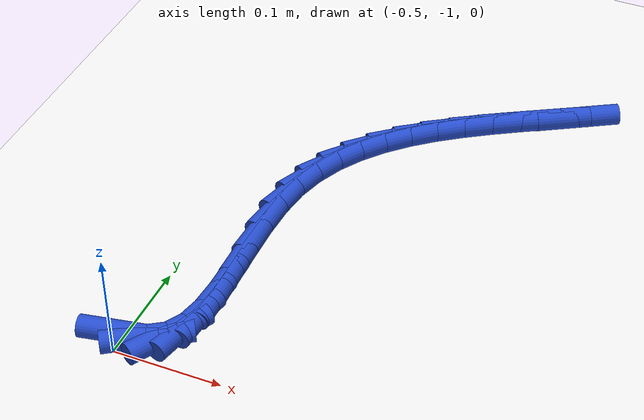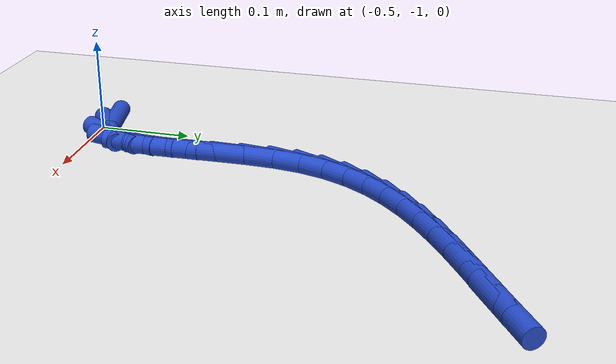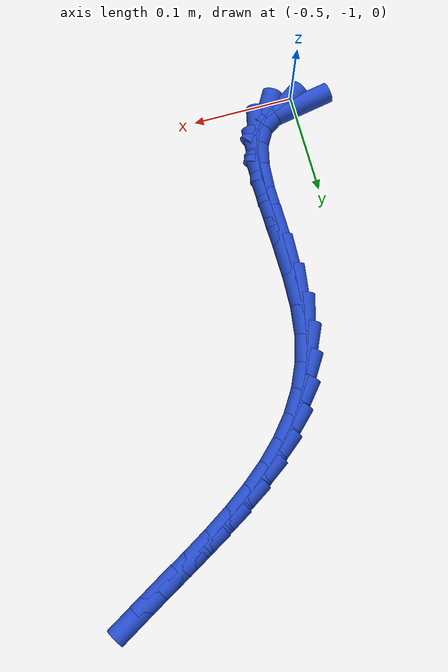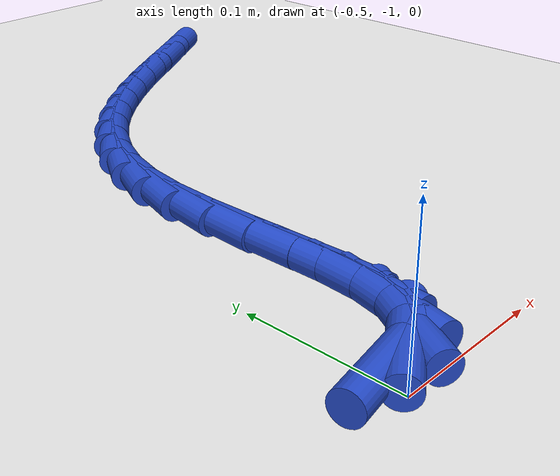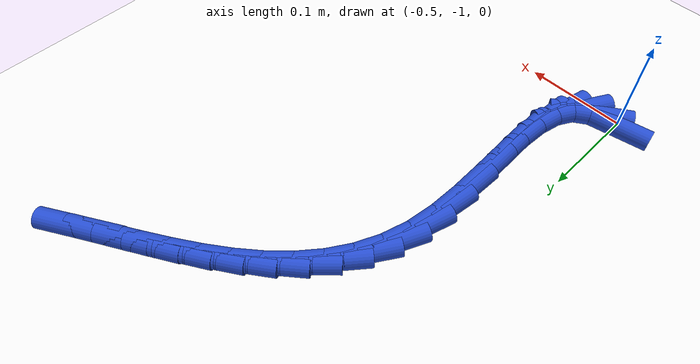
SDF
<sdf version="1.6">
 <world name="default">
  <model name="ground_plane">
   <static>1</static>
   <link name="link">
    <collision name="collision">
     <geometry><plane><normal>0 0 1</normal><size>100 100</size></plane></geometry>
     <surface><friction><ode><mu>100</mu><mu2>50</mu2></ode></friction></surface>
    </collision>
    <visual name="visual">
     <cast_shadows>0</cast_shadows>
     <geometry><plane><normal>0 0 1</normal><size>100 100</size></plane></geometry>
     <material>
      <script><uri>file://media/materials/scripts/gazebo.material</uri><name>Gazebo/WhiteGlow</name></script>
     </material>
    </visual>
   </link>
  </model>
  <model name="line">
   <link name="link_215">
    <pose>-0.49659612297587397 -0.9854050994066351 0.01 0 1.57 0.18572902300272476</pose>
    <collision name="collision">
     <geometry><cylinder><radius>0.01</radius><length>0.08</length></cylinder></geometry>
    </collision>
    <visual name="visual">
     <material>
      <script><name>Gazebo/Blue</name><uri>file://media/materials/scripts/gazebo.material</uri></script>
     </material>
     <geometry><cylinder><radius>0.01</radius><length>0.08</length></cylinder></geometry>
    </visual>
   </link>
   <link name="link_216">
    <pose>-0.4771522201242002 -0.9817516970351042 0.01 0 1.57 0.5827101683935811</pose>
    <collision name="collision">
     <geometry><cylinder><radius>0.01</radius><length>0.08</length></cylinder></geometry>
    </collision>
    <visual name="visual">
     <material>
      <script><name>Gazebo/Blue</name><uri>file://media/materials/scripts/gazebo.material</uri></script>
     </material>
     <geometry><cylinder><radius>0.01</radius><length>0.08</length></cylinder></geometry>
    </visual>
   </link>
   <link name="link_217">
    <pose>-0.4627462421071338 -0.9722574538637154 0.01 0 1.57 1.0533408832191964</pose>
    <collision name="collision">
     <geometry><cylinder><radius>0.01</radius><length>0.08</length></cylinder></geometry>
    </collision>
    <visual name="visual">
     <material>
      <script><name>Gazebo/Blue</name><uri>file://media/materials/scripts/gazebo.material</uri></script>
     </material>
     <geometry><cylinder><radius>0.01</radius><length>0.08</length></cylinder></geometry>
    </visual>
   </link>
   <link name="link_218">
    <pose>-0.45366133286164684 -0.9562962791273784 0.01 0 1.57 1.3511954769195977</pose>
    <collision name="collision">
     <geometry><cylinder><radius>0.01</radius><length>0.08</length></cylinder></geometry>
    </collision>
    <visual name="visual">
     <material>
      <script><name>Gazebo/Blue</name><uri>file://media/materials/scripts/gazebo.material</uri></script>
     </material>
     <geometry><cylinder><radius>0.01</radius><length>0.08</length></cylinder></geometry>
    </visual>
   </link>
   <link name="link_219">
    <pose>-0.448877783599036 -0.9348646403164717 0.01 0 1.57 1.5059524323706879</pose>
    <collision name="collision">
     <geometry><cylinder><radius>0.01</radius><length>0.08</length></cylinder></geometry>
    </collision>
    <visual name="visual">
     <material>
      <script><name>Gazebo/Blue</name><uri>file://media/materials/scripts/gazebo.material</uri></script>
     </material>
     <geometry><cylinder><radius>0.01</radius><length>0.08</length></cylinder></geometry>
    </visual>
   </link>
   <link name="link_220">
    <pose>-0.44720909145574644 -0.9091667284021471 0.01 0 1.57 -1.561767984963005</pose>
    <collision name="collision">
     <geometry><cylinder><radius>0.01</radius><length>0.08</length></cylinder></geometry>
    </collision>
    <visual name="visual">
     <material>
      <script><name>Gazebo/Blue</name><uri>file://media/materials/scripts/gazebo.material</uri></script>
     </material>
     <geometry><cylinder><radius>0.01</radius><length>0.08</length></cylinder></geometry>
    </visual>
   </link>
   <link name="link_221">
    <pose>-0.4474687535682229 -0.8804067343555584 0.01 0 1.57 -1.5380979043716756</pose>
    <collision name="collision">
     <geometry><cylinder><radius>0.01</radius><length>0.08</length></cylinder></geometry>
    </collision>
    <visual name="visual">
     <material>
      <script><name>Gazebo/Blue</name><uri>file://media/materials/scripts/gazebo.material</uri></script>
     </material>
     <geometry><cylinder><radius>0.01</radius><length>0.08</length></cylinder></geometry>
    </visual>
   </link>
   <link name="link_222">
    <pose>-0.4484702670729107 -0.8497888491478568 0.01 0 1.57 -1.5529909236708062</pose>
    <collision name="collision">
     <geometry><cylinder><radius>0.01</radius><length>0.08</length></cylinder></geometry>
    </collision>
    <visual name="visual">
     <material>
      <script><name>Gazebo/Blue</name><uri>file://media/materials/scripts/gazebo.material</uri></script>
     </material>
     <geometry><cylinder><radius>0.01</radius><length>0.08</length></cylinder></geometry>
    </visual>
   </link>
   <link name="link_223">
    <pose>-0.44902712910625464 -0.8185172637501951 0.01 0 1.57 1.535841363823414</pose>
    <collision name="collision">
     <geometry><cylinder><radius>0.01</radius><length>0.08</length></cylinder></geometry>
    </collision>
    <visual name="visual">
     <material>
      <script><name>Gazebo/Blue</name><uri>file://media/materials/scripts/gazebo.material</uri></script>
     </material>
     <geometry><cylinder><radius>0.01</radius><length>0.08</length></cylinder></geometry>
    </visual>
   </link>
   <link name="link_224">
    <pose>-0.44795283680470005 -0.7877961691337254 0.01 0 1.57 1.4373068172647263</pose>
    <collision name="collision">
     <geometry><cylinder><radius>0.01</radius><length>0.08</length></cylinder></geometry>
    </collision>
    <visual name="visual">
     <material>
      <script><name>Gazebo/Blue</name><uri>file://media/materials/scripts/gazebo.material</uri></script>
     </material>
     <geometry><cylinder><radius>0.01</radius><length>0.08</length></cylinder></geometry>
    </visual>
   </link>
   <link name="link_225">
    <pose>-0.4440627547416634 -0.7588279887330335 0.01 0 1.57 1.2956466160979885</pose>
    <collision name="collision">
     <geometry><cylinder><radius>0.01</radius><length>0.08</length></cylinder></geometry>
    </collision>
    <visual name="visual">
     <material>
      <script><name>Gazebo/Blue</name><uri>file://media/materials/scripts/gazebo.material</uri></script>
     </material>
     <geometry><cylinder><radius>0.01</radius><length>0.08</length></cylinder></geometry>
    </visual>
   </link>
   <link name="link_226">
    <pose>-0.4366037592680955 -0.7324067183585427 0.01 0 1.57 1.1480732105878613</pose>
    <collision name="collision">
     <geometry><cylinder><radius>0.01</radius><length>0.08</length></cylinder></geometry>
    </collision>
    <visual name="visual">
     <material>
      <script><name>Gazebo/Blue</name><uri>file://media/materials/scripts/gazebo.material</uri></script>
     </material>
     <geometry><cylinder><radius>0.01</radius><length>0.08</length></cylinder></geometry>
    </visual>
   </link>
   <link name="link_227">
    <pose>-0.42580359392983164 -0.7083979590957024 0.01 0 1.57 1.0083845068990989</pose>
    <collision name="collision">
     <geometry><cylinder><radius>0.01</radius><length>0.08</length></cylinder></geometry>
    </collision>
    <visual name="visual">
     <material>
      <script><name>Gazebo/Blue</name><uri>file://media/materials/scripts/gazebo.material</uri></script>
     </material>
     <geometry><cylinder><radius>0.01</radius><length>0.08</length></cylinder></geometry>
    </visual>
   </link>
   <link name="link_228">
    <pose>-0.41202557247831134 -0.6865389942878644 0.01 0 1.57 0.8835113111752338</pose>
    <collision name="collision">
     <geometry><cylinder><radius>0.01</radius><length>0.08</length></cylinder></geometry>
    </collision>
    <visual name="visual">
     <material>
      <script><name>Gazebo/Blue</name><uri>file://media/materials/scripts/gazebo.material</uri></script>
     </material>
     <geometry><cylinder><radius>0.01</radius><length>0.08</length></cylinder></geometry>
    </visual>
   </link>
   <link name="link_229">
    <pose>-0.3956330086649733 -0.6665671072783791 0.01 0 1.57 0.7773892511675377</pose>
    <collision name="collision">
     <geometry><cylinder><radius>0.01</radius><length>0.08</length></cylinder></geometry>
    </collision>
    <visual name="visual">
     <material>
      <script><name>Gazebo/Blue</name><uri>file://media/materials/scripts/gazebo.material</uri></script>
     </material>
     <geometry><cylinder><radius>0.01</radius><length>0.08</length></cylinder></geometry>
    </visual>
   </link>
   <link name="link_230">
    <pose>-0.3769892162412579 -0.6482195814105992 0.01 0 1.57 0.6911670374644883</pose>
    <collision name="collision">
     <geometry><cylinder><radius>0.01</radius><length>0.08</length></cylinder></geometry>
    </collision>
    <visual name="visual">
     <material>
      <script><name>Gazebo/Blue</name><uri>file://media/materials/scripts/gazebo.material</uri></script>
     </material>
     <geometry><cylinder><radius>0.01</radius><length>0.08</length></cylinder></geometry>
    </visual>
   </link>
   <link name="link_231">
    <pose>-0.3564575089586039 -0.6312337000278754 0.01 0 1.57 0.6242144704900565</pose>
    <collision name="collision">
     <geometry><cylinder><radius>0.01</radius><length>0.08</length></cylinder></geometry>
    </collision>
    <visual name="visual">
     <material>
      <script><name>Gazebo/Blue</name><uri>file://media/materials/scripts/gazebo.material</uri></script>
     </material>
     <geometry><cylinder><radius>0.01</radius><length>0.08</length></cylinder></geometry>
    </visual>
   </link>
   <link name="link_232">
    <pose>-0.33440120056845074 -0.615346746473559 0.01 0 1.57 0.5751420654782865</pose>
    <collision name="collision">
     <geometry><cylinder><radius>0.01</radius><length>0.08</length></cylinder></geometry>
    </collision>
    <visual name="visual">
     <material>
      <script><name>Gazebo/Blue</name><uri>file://media/materials/scripts/gazebo.material</uri></script>
     </material>
     <geometry><cylinder><radius>0.01</radius><length>0.08</length></cylinder></geometry>
    </visual>
   </link>
   <link name="link_233">
    <pose>-0.31118360482223767 -0.6002960040910013 0.01 0 1.57 0.5424960194275692</pose>
    <collision name="collision">
     <geometry><cylinder><radius>0.01</radius><length>0.08</length></cylinder></geometry>
    </collision>
    <visual name="visual">
     <material>
      <script><name>Gazebo/Blue</name><uri>file://media/materials/scripts/gazebo.material</uri></script>
     </material>
     <geometry><cylinder><radius>0.01</radius><length>0.08</length></cylinder></geometry>
    </visual>
   </link>
   <link name="link_234">
    <pose>-0.2871680354714041 -0.5858187562235535 0.01 0 1.57 0.5251349299799507</pose>
    <collision name="collision">
     <geometry><cylinder><radius>0.01</radius><length>0.08</length></cylinder></geometry>
    </collision>
    <visual name="visual">
     <material>
      <script><name>Gazebo/Blue</name><uri>file://media/materials/scripts/gazebo.material</uri></script>
     </material>
     <geometry><cylinder><radius>0.01</radius><length>0.08</length></cylinder></geometry>
    </visual>
   </link>
   <link name="link_235">
    <pose>-0.26271780626738916 -0.5716522862145671 0.01 0 1.57 0.522401166974749</pose>
    <collision name="collision">
     <geometry><cylinder><radius>0.01</radius><length>0.08</length></cylinder></geometry>
    </collision>
    <visual name="visual">
     <material>
      <script><name>Gazebo/Blue</name><uri>file://media/materials/scripts/gazebo.material</uri></script>
     </material>
     <geometry><cylinder><radius>0.01</radius><length>0.08</length></cylinder></geometry>
    </visual>
   </link>
   <link name="link_236">
    <pose>-0.23819623096163173 -0.557533877407393 0.01 0 1.57 0.5341843150182551</pose>
    <collision name="collision">
     <geometry><cylinder><radius>0.01</radius><length>0.08</length></cylinder></geometry>
    </collision>
    <visual name="visual">
     <material>
      <script><name>Gazebo/Blue</name><uri>file://media/materials/scripts/gazebo.material</uri></script>
     </material>
     <geometry><cylinder><radius>0.01</radius><length>0.08</length></cylinder></geometry>
    </visual>
   </link>
  </model>
 </world>
</sdf>
